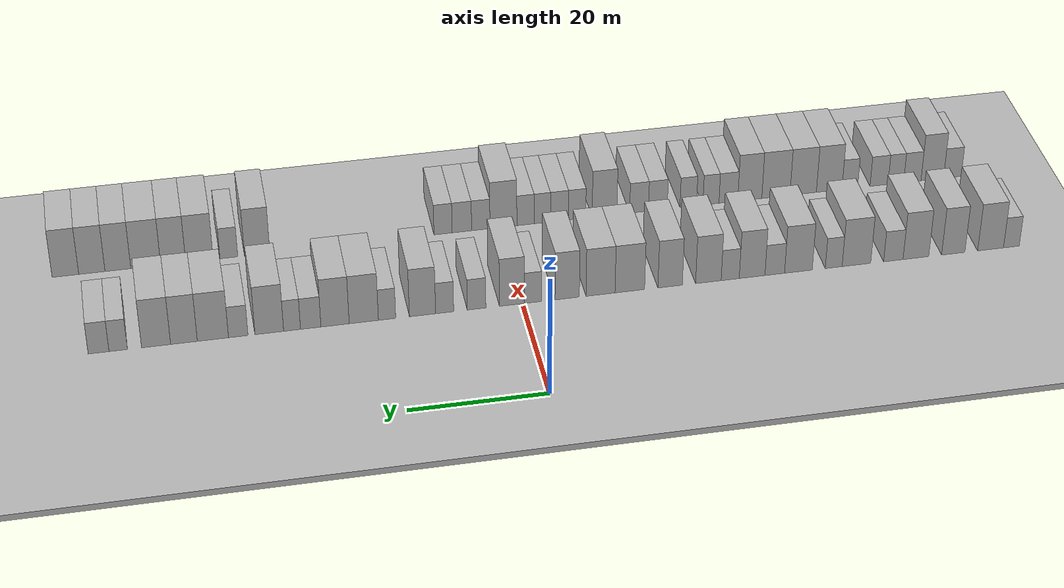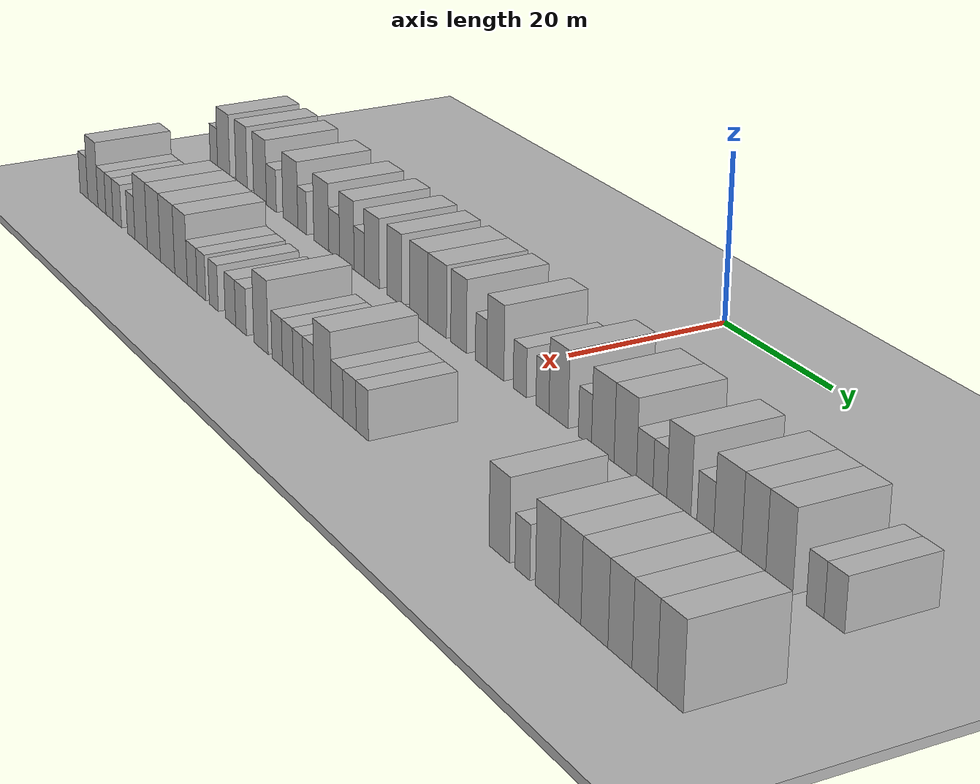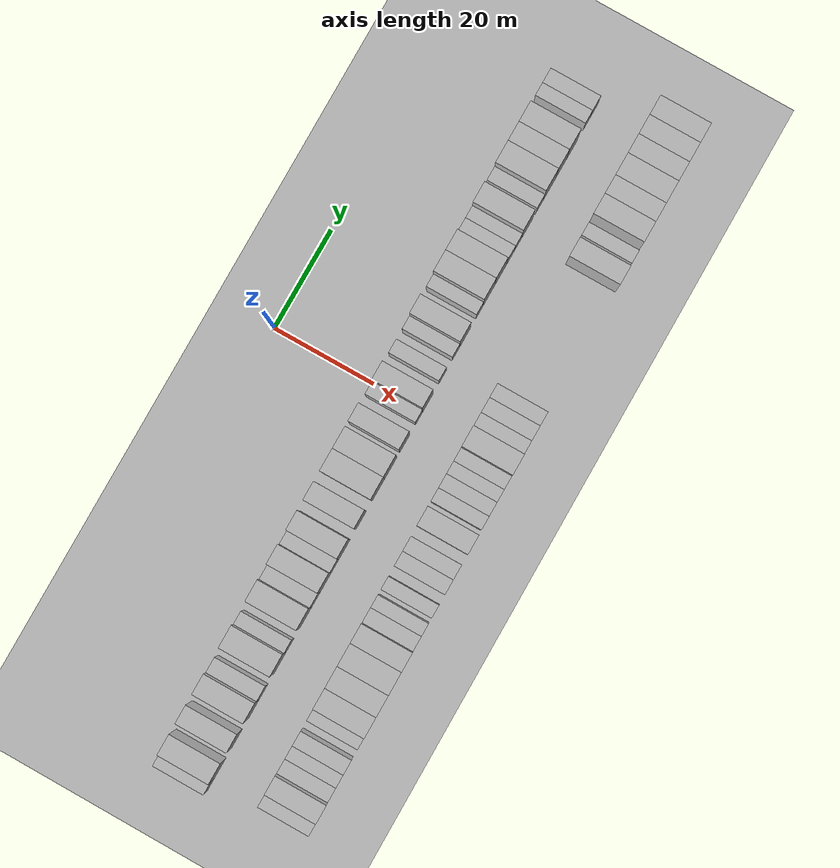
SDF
<sdf version="1.6">
 <world name="default">
  <include><name>ground_plane_1</name><uri>model://HANNAS_ground_plane</uri></include>
  <include>
   <name>ground_plane_2</name>
   <uri>model://HANNAS_ground_plane</uri>
   <pose>100 0 0  0 0 0</pose>
  </include>
  <model name="building_32">
   <static>1</static>
   <pose>25.0000 -74.3386 0 0.000000 0.000000 0.000000</pose>
   <link name="link">
    <pose>0 0 3.00 0 0 0</pose>
    <collision name="collision"><geometry><box><size>10.0000 2.4773 6.0000</size></box></geometry></collision>
    <visual name="visual">
     <cast_shadows>0</cast_shadows>
     <geometry><box><size>10.0000 2.4773 6.0000</size></box></geometry>
     <material>
      <script>
       <uri>model://HANNAS_wall/materials/scripts</uri>
       <uri>model://HANNAS_wall/materials/textures</uri>
       <name>vrc/HANNAS_wall</name>
      </script>
     </material>
    </visual>
   </link>
  </model>
  <model name="building_33">
   <static>1</static>
   <pose>25.0000 -71.0812 0 0.000000 0.000000 0.000000</pose>
   <link name="link">
    <pose>0 0 4.50 0 0 0</pose>
    <collision name="collision"><geometry><box><size>10.0000 4.0374 9.0000</size></box></geometry></collision>
    <visual name="visual">
     <cast_shadows>0</cast_shadows>
     <geometry><box><size>10.0000 4.0374 9.0000</size></box></geometry>
     <material>
      <script>
       <uri>model://HANNAS_wall/materials/scripts</uri>
       <uri>model://HANNAS_wall/materials/textures</uri>
       <name>vrc/HANNAS_wall</name>
      </script>
     </material>
    </visual>
   </link>
  </model>
  <model name="building_34">
   <static>1</static>
   <pose>25.0000 -65.2524 0 0.000000 0.000000 0.000000</pose>
   <link name="link">
    <pose>0 0 4.50 0 0 0</pose>
    <collision name="collision"><geometry><box><size>10.0000 3.6204 9.0000</size></box></geometry></collision>
    <visual name="visual">
     <cast_shadows>0</cast_shadows>
     <geometry><box><size>10.0000 3.6204 9.0000</size></box></geometry>
     <material>
      <script>
       <uri>model://HANNAS_wall/materials/scripts</uri>
       <uri>model://HANNAS_wall/materials/textures</uri>
       <name>vrc/HANNAS_wall</name>
      </script>
     </material>
    </visual>
   </link>
  </model>
  <model name="building_35">
   <static>1</static>
   <pose>25.0000 -59.4481 0 0.000000 0.000000 0.000000</pose>
   <link name="link">
    <pose>0 0 4.50 0 0 0</pose>
    <collision name="collision"><geometry><box><size>10.0000 3.9881 9.0000</size></box></geometry></collision>
    <visual name="visual">
     <cast_shadows>0</cast_shadows>
     <geometry><box><size>10.0000 3.9881 9.0000</size></box></geometry>
     <material>
      <script>
       <uri>model://HANNAS_wall/materials/scripts</uri>
       <uri>model://HANNAS_wall/materials/textures</uri>
       <name>vrc/HANNAS_wall</name>
      </script>
     </material>
    </visual>
   </link>
  </model>
  <model name="building_36">
   <static>1</static>
   <pose>25.0000 -55.9549 0 0.000000 0.000000 0.000000</pose>
   <link name="link">
    <pose>0 0 3.00 0 0 0</pose>
    <collision name="collision"><geometry><box><size>10.0000 2.9984 6.0000</size></box></geometry></collision>
    <visual name="visual">
     <cast_shadows>0</cast_shadows>
     <geometry><box><size>10.0000 2.9984 6.0000</size></box></geometry>
     <material>
      <script>
       <uri>model://HANNAS_wall/materials/scripts</uri>
       <uri>model://HANNAS_wall/materials/textures</uri>
       <name>vrc/HANNAS_wall</name>
      </script>
     </material>
    </visual>
   </link>
  </model>
  <model name="building_37">
   <static>1</static>
   <pose>25.0000 -50.2555 0 0.000000 0.000000 0.000000</pose>
   <link name="link">
    <pose>0 0 4.50 0 0 0</pose>
    <collision name="collision"><geometry><box><size>10.0000 4.4004 9.0000</size></box></geometry></collision>
    <visual name="visual">
     <cast_shadows>0</cast_shadows>
     <geometry><box><size>10.0000 4.4004 9.0000</size></box></geometry>
     <material>
      <script>
       <uri>model://HANNAS_wall/materials/scripts</uri>
       <uri>model://HANNAS_wall/materials/textures</uri>
       <name>vrc/HANNAS_wall</name>
      </script>
     </material>
    </visual>
   </link>
  </model>
  <model name="building_38">
   <static>1</static>
   <pose>25.0000 -46.7610 0 0.000000 0.000000 0.000000</pose>
   <link name="link">
    <pose>0 0 3.00 0 0 0</pose>
    <collision name="collision"><geometry><box><size>10.0000 2.5888 6.0000</size></box></geometry></collision>
    <visual name="visual">
     <cast_shadows>0</cast_shadows>
     <geometry><box><size>10.0000 2.5888 6.0000</size></box></geometry>
     <material>
      <script>
       <uri>model://HANNAS_wall/materials/scripts</uri>
       <uri>model://HANNAS_wall/materials/textures</uri>
       <name>vrc/HANNAS_wall</name>
      </script>
     </material>
    </visual>
   </link>
  </model>
  <model name="building_39">
   <static>1</static>
   <pose>25.0000 -41.3488 0 0.000000 0.000000 0.000000</pose>
   <link name="link">
    <pose>0 0 4.50 0 0 0</pose>
    <collision name="collision"><geometry><box><size>10.0000 4.2356 9.0000</size></box></geometry></collision>
    <visual name="visual">
     <cast_shadows>0</cast_shadows>
     <geometry><box><size>10.0000 4.2356 9.0000</size></box></geometry>
     <material>
      <script>
       <uri>model://HANNAS_wall/materials/scripts</uri>
       <uri>model://HANNAS_wall/materials/textures</uri>
       <name>vrc/HANNAS_wall</name>
      </script>
     </material>
    </visual>
   </link>
  </model>
  <model name="building_40">
   <static>1</static>
   <pose>25.0000 -37.7375 0 0.000000 0.000000 0.000000</pose>
   <link name="link">
    <pose>0 0 3.00 0 0 0</pose>
    <collision name="collision"><geometry><box><size>10.0000 2.9869 6.0000</size></box></geometry></collision>
    <visual name="visual">
     <cast_shadows>0</cast_shadows>
     <geometry><box><size>10.0000 2.9869 6.0000</size></box></geometry>
     <material>
      <script>
       <uri>model://HANNAS_wall/materials/scripts</uri>
       <uri>model://HANNAS_wall/materials/textures</uri>
       <name>vrc/HANNAS_wall</name>
      </script>
     </material>
    </visual>
   </link>
  </model>
  <model name="building_41">
   <static>1</static>
   <pose>25.0000 -34.2889 0 0.000000 0.000000 0.000000</pose>
   <link name="link">
    <pose>0 0 4.50 0 0 0</pose>
    <collision name="collision"><geometry><box><size>10.0000 3.9105 9.0000</size></box></geometry></collision>
    <visual name="visual">
     <cast_shadows>0</cast_shadows>
     <geometry><box><size>10.0000 3.9105 9.0000</size></box></geometry>
     <material>
      <script>
       <uri>model://HANNAS_wall/materials/scripts</uri>
       <uri>model://HANNAS_wall/materials/textures</uri>
       <name>vrc/HANNAS_wall</name>
      </script>
     </material>
    </visual>
   </link>
  </model>
  <model name="building_42">
   <static>1</static>
   <pose>25.0000 -30.9628 0 0.000000 0.000000 0.000000</pose>
   <link name="link">
    <pose>0 0 3.00 0 0 0</pose>
    <collision name="collision"><geometry><box><size>10.0000 2.7416 6.0000</size></box></geometry></collision>
    <visual name="visual">
     <cast_shadows>0</cast_shadows>
     <geometry><box><size>10.0000 2.7416 6.0000</size></box></geometry>
     <material>
      <script>
       <uri>model://HANNAS_wall/materials/scripts</uri>
       <uri>model://HANNAS_wall/materials/textures</uri>
       <name>vrc/HANNAS_wall</name>
      </script>
     </material>
    </visual>
   </link>
  </model>
  <model name="building_43">
   <static>1</static>
   <pose>25.0000 -27.6589 0 0.000000 0.000000 0.000000</pose>
   <link name="link">
    <pose>0 0 4.50 0 0 0</pose>
    <collision name="collision"><geometry><box><size>10.0000 3.8662 9.0000</size></box></geometry></collision>
    <visual name="visual">
     <cast_shadows>0</cast_shadows>
     <geometry><box><size>10.0000 3.8662 9.0000</size></box></geometry>
     <material>
      <script>
       <uri>model://HANNAS_wall/materials/scripts</uri>
       <uri>model://HANNAS_wall/materials/textures</uri>
       <name>vrc/HANNAS_wall</name>
      </script>
     </material>
    </visual>
   </link>
  </model>
  <model name="building_44">
   <static>1</static>
   <pose>25.0000 -21.8869 0 0.000000 0.000000 0.000000</pose>
   <link name="link">
    <pose>0 0 4.50 0 0 0</pose>
    <collision name="collision"><geometry><box><size>10.0000 3.6778 9.0000</size></box></geometry></collision>
    <visual name="visual">
     <cast_shadows>0</cast_shadows>
     <geometry><box><size>10.0000 3.6778 9.0000</size></box></geometry>
     <material>
      <script>
       <uri>model://HANNAS_wall/materials/scripts</uri>
       <uri>model://HANNAS_wall/materials/textures</uri>
       <name>vrc/HANNAS_wall</name>
      </script>
     </material>
    </visual>
   </link>
  </model>
  <model name="building_45">
   <static>1</static>
   <pose>25.0000 -15.8329 0 0.000000 0.000000 0.000000</pose>
   <link name="link">
    <pose>0 0 4.50 0 0 0</pose>
    <collision name="collision"><geometry><box><size>10.0000 4.4302 9.0000</size></box></geometry></collision>
    <visual name="visual">
     <cast_shadows>0</cast_shadows>
     <geometry><box><size>10.0000 4.4302 9.0000</size></box></geometry>
     <material>
      <script>
       <uri>model://HANNAS_wall/materials/scripts</uri>
       <uri>model://HANNAS_wall/materials/textures</uri>
       <name>vrc/HANNAS_wall</name>
      </script>
     </material>
    </visual>
   </link>
  </model>
  <model name="building_46">
   <static>1</static>
   <pose>25.0000 -11.4531 0 0.000000 0.000000 0.000000</pose>
   <link name="link">
    <pose>0 0 4.50 0 0 0</pose>
    <collision name="collision"><geometry><box><size>10.0000 4.3293 9.0000</size></box></geometry></collision>
    <visual name="visual">
     <cast_shadows>0</cast_shadows>
     <geometry><box><size>10.0000 4.3293 9.0000</size></box></geometry>
     <material>
      <script>
       <uri>model://HANNAS_wall/materials/scripts</uri>
       <uri>model://HANNAS_wall/materials/textures</uri>
       <name>vrc/HANNAS_wall</name>
      </script>
     </material>
    </visual>
   </link>
  </model>
  <model name="building_47">
   <static>1</static>
   <pose>25.0000 -6.4821 0 0.000000 0.000000 0.000000</pose>
   <link name="link">
    <pose>0 0 4.50 0 0 0</pose>
    <collision name="collision"><geometry><box><size>10.0000 3.6127 9.0000</size></box></geometry></collision>
    <visual name="visual">
     <cast_shadows>0</cast_shadows>
     <geometry><box><size>10.0000 3.6127 9.0000</size></box></geometry>
     <material>
      <script>
       <uri>model://HANNAS_wall/materials/scripts</uri>
       <uri>model://HANNAS_wall/materials/textures</uri>
       <name>vrc/HANNAS_wall</name>
      </script>
     </material>
    </visual>
   </link>
  </model>
  <model name="building_48">
   <static>1</static>
   <pose>25.0000 -1.4025 0 0.000000 0.000000 0.000000</pose>
   <link name="link">
    <pose>0 0 3.00 0 0 0</pose>
    <collision name="collision"><geometry><box><size>10.0000 2.5464 6.0000</size></box></geometry></collision>
    <visual name="visual">
     <cast_shadows>0</cast_shadows>
     <geometry><box><size>10.0000 2.5464 6.0000</size></box></geometry>
     <material>
      <script>
       <uri>model://HANNAS_wall/materials/scripts</uri>
       <uri>model://HANNAS_wall/materials/textures</uri>
       <name>vrc/HANNAS_wall</name>
      </script>
     </material>
    </visual>
   </link>
  </model>
  <model name="building_49">
   <static>1</static>
   <pose>25.0000 1.7105 0 0.000000 0.000000 0.000000</pose>
   <link name="link">
    <pose>0 0 4.50 0 0 0</pose>
    <collision name="collision"><geometry><box><size>10.0000 3.6796 9.0000</size></box></geometry></collision>
    <visual name="visual">
     <cast_shadows>0</cast_shadows>
     <geometry><box><size>10.0000 3.6796 9.0000</size></box></geometry>
     <material>
      <script>
       <uri>model://HANNAS_wall/materials/scripts</uri>
       <uri>model://HANNAS_wall/materials/textures</uri>
       <name>vrc/HANNAS_wall</name>
      </script>
     </material>
    </visual>
   </link>
  </model>
  <model name="building_50">
   <static>1</static>
   <pose>25.0000 6.9176 0 0.000000 0.000000 0.000000</pose>
   <link name="link">
    <pose>0 0 3.00 0 0 0</pose>
    <collision name="collision"><geometry><box><size>10.0000 2.7346 6.0000</size></box></geometry></collision>
    <visual name="visual">
     <cast_shadows>0</cast_shadows>
     <geometry><box><size>10.0000 2.7346 6.0000</size></box></geometry>
     <material>
      <script>
       <uri>model://HANNAS_wall/materials/scripts</uri>
       <uri>model://HANNAS_wall/materials/textures</uri>
       <name>vrc/HANNAS_wall</name>
      </script>
     </material>
    </visual>
   </link>
  </model>
  <model name="building_51">
   <static>1</static>
   <pose>25.0000 11.6050 0 0.000000 0.000000 0.000000</pose>
   <link name="link">
    <pose>0 0 3.00 0 0 0</pose>
    <collision name="collision"><geometry><box><size>10.0000 2.6404 6.0000</size></box></geometry></collision>
    <visual name="visual">
     <cast_shadows>0</cast_shadows>
     <geometry><box><size>10.0000 2.6404 6.0000</size></box></geometry>
     <material>
      <script>
       <uri>model://HANNAS_wall/materials/scripts</uri>
       <uri>model://HANNAS_wall/materials/textures</uri>
       <name>vrc/HANNAS_wall</name>
      </script>
     </material>
    </visual>
   </link>
  </model>
  <model name="building_52">
   <static>1</static>
   <pose>25.0000 14.8452 0 0.000000 0.000000 0.000000</pose>
   <link name="link">
    <pose>0 0 4.50 0 0 0</pose>
    <collision name="collision"><geometry><box><size>10.0000 3.8400 9.0000</size></box></geometry></collision>
    <visual name="visual">
     <cast_shadows>0</cast_shadows>
     <geometry><box><size>10.0000 3.8400 9.0000</size></box></geometry>
     <material>
      <script>
       <uri>model://HANNAS_wall/materials/scripts</uri>
       <uri>model://HANNAS_wall/materials/textures</uri>
       <name>vrc/HANNAS_wall</name>
      </script>
     </material>
    </visual>
   </link>
  </model>
  <model name="building_53">
   <static>1</static>
   <pose>25.0000 20.0217 0 0.000000 0.000000 0.000000</pose>
   <link name="link">
    <pose>0 0 3.00 0 0 0</pose>
    <collision name="collision"><geometry><box><size>10.0000 2.5130 6.0000</size></box></geometry></collision>
    <visual name="visual">
     <cast_shadows>0</cast_shadows>
     <geometry><box><size>10.0000 2.5130 6.0000</size></box></geometry>
     <material>
      <script>
       <uri>model://HANNAS_wall/materials/scripts</uri>
       <uri>model://HANNAS_wall/materials/textures</uri>
       <name>vrc/HANNAS_wall</name>
      </script>
     </material>
    </visual>
   </link>
  </model>
  <model name="building_54">
   <static>1</static>
   <pose>25.0000 23.4024 0 0.000000 0.000000 0.000000</pose>
   <link name="link">
    <pose>0 0 4.50 0 0 0</pose>
    <collision name="collision"><geometry><box><size>10.0000 4.2483 9.0000</size></box></geometry></collision>
    <visual name="visual">
     <cast_shadows>0</cast_shadows>
     <geometry><box><size>10.0000 4.2483 9.0000</size></box></geometry>
     <material>
      <script>
       <uri>model://HANNAS_wall/materials/scripts</uri>
       <uri>model://HANNAS_wall/materials/textures</uri>
       <name>vrc/HANNAS_wall</name>
      </script>
     </material>
    </visual>
   </link>
  </model>
  <model name="building_55">
   <static>1</static>
   <pose>25.0000 27.5710 0 0.000000 0.000000 0.000000</pose>
   <link name="link">
    <pose>0 0 4.50 0 0 0</pose>
    <collision name="collision"><geometry><box><size>10.0000 4.0890 9.0000</size></box></geometry></collision>
    <visual name="visual">
     <cast_shadows>0</cast_shadows>
     <geometry><box><size>10.0000 4.0890 9.0000</size></box></geometry>
     <material>
      <script>
       <uri>model://HANNAS_wall/materials/scripts</uri>
       <uri>model://HANNAS_wall/materials/textures</uri>
       <name>vrc/HANNAS_wall</name>
      </script>
     </material>
    </visual>
   </link>
  </model>
  <model name="building_56">
   <static>1</static>
   <pose>25.0000 31.0874 0 0.000000 0.000000 0.000000</pose>
   <link name="link">
    <pose>0 0 3.00 0 0 0</pose>
    <collision name="collision"><geometry><box><size>10.0000 2.9438 6.0000</size></box></geometry></collision>
    <visual name="visual">
     <cast_shadows>0</cast_shadows>
     <geometry><box><size>10.0000 2.9438 6.0000</size></box></geometry>
     <material>
      <script>
       <uri>model://HANNAS_wall/materials/scripts</uri>
       <uri>model://HANNAS_wall/materials/textures</uri>
       <name>vrc/HANNAS_wall</name>
      </script>
     </material>
    </visual>
   </link>
  </model>
  <model name="building_57">
   <static>1</static>
   <pose>25.0000 33.7737 0 0.000000 0.000000 0.000000</pose>
   <link name="link">
    <pose>0 0 3.00 0 0 0</pose>
    <collision name="collision"><geometry><box><size>10.0000 2.4288 6.0000</size></box></geometry></collision>
    <visual name="visual">
     <cast_shadows>0</cast_shadows>
     <geometry><box><size>10.0000 2.4288 6.0000</size></box></geometry>
     <material>
      <script>
       <uri>model://HANNAS_wall/materials/scripts</uri>
       <uri>model://HANNAS_wall/materials/textures</uri>
       <name>vrc/HANNAS_wall</name>
      </script>
     </material>
    </visual>
   </link>
  </model>
  <model name="building_58">
   <static>1</static>
   <pose>25.0000 37.0472 0 0.000000 0.000000 0.000000</pose>
   <link name="link">
    <pose>0 0 4.50 0 0 0</pose>
    <collision name="collision"><geometry><box><size>10.0000 4.1182 9.0000</size></box></geometry></collision>
    <visual name="visual">
     <cast_shadows>0</cast_shadows>
     <geometry><box><size>10.0000 4.1182 9.0000</size></box></geometry>
     <material>
      <script>
       <uri>model://HANNAS_wall/materials/scripts</uri>
       <uri>model://HANNAS_wall/materials/textures</uri>
       <name>vrc/HANNAS_wall</name>
      </script>
     </material>
    </visual>
   </link>
  </model>
  <model name="building_59">
   <static>1</static>
   <pose>25.0000 41.4987 0 0.000000 0.000000 0.000000</pose>
   <link name="link">
    <pose>0 0 3.00 0 0 0</pose>
    <collision name="collision"><geometry><box><size>10.0000 2.7848 6.0000</size></box></geometry></collision>
    <visual name="visual">
     <cast_shadows>0</cast_shadows>
     <geometry><box><size>10.0000 2.7848 6.0000</size></box></geometry>
     <material>
      <script>
       <uri>model://HANNAS_wall/materials/scripts</uri>
       <uri>model://HANNAS_wall/materials/textures</uri>
       <name>vrc/HANNAS_wall</name>
      </script>
     </material>
    </visual>
   </link>
  </model>
  <model name="building_60">
   <static>1</static>
   <pose>25.0000 45.1149 0 0.000000 0.000000 0.000000</pose>
   <link name="link">
    <pose>0 0 4.50 0 0 0</pose>
    <collision name="collision"><geometry><box><size>10.0000 4.4474 9.0000</size></box></geometry></collision>
    <visual name="visual">
     <cast_shadows>0</cast_shadows>
     <geometry><box><size>10.0000 4.4474 9.0000</size></box></geometry>
     <material>
      <script>
       <uri>model://HANNAS_wall/materials/scripts</uri>
       <uri>model://HANNAS_wall/materials/textures</uri>
       <name>vrc/HANNAS_wall</name>
      </script>
     </material>
    </visual>
   </link>
  </model>
  <model name="building_61">
   <static>1</static>
   <pose>25.0000 49.2391 0 0.000000 0.000000 0.000000</pose>
   <link name="link">
    <pose>0 0 4.50 0 0 0</pose>
    <collision name="collision"><geometry><box><size>10.0000 3.8010 9.0000</size></box></geometry></collision>
    <visual name="visual">
     <cast_shadows>0</cast_shadows>
     <geometry><box><size>10.0000 3.8010 9.0000</size></box></geometry>
     <material>
      <script>
       <uri>model://HANNAS_wall/materials/scripts</uri>
       <uri>model://HANNAS_wall/materials/textures</uri>
       <name>vrc/HANNAS_wall</name>
      </script>
     </material>
    </visual>
   </link>
  </model>
  <model name="building_62">
   <static>1</static>
   <pose>25.0000 53.1972 0 0.000000 0.000000 0.000000</pose>
   <link name="link">
    <pose>0 0 4.50 0 0 0</pose>
    <collision name="collision"><geometry><box><size>10.0000 4.1154 9.0000</size></box></geometry></collision>
    <visual name="visual">
     <cast_shadows>0</cast_shadows>
     <geometry><box><size>10.0000 4.1154 9.0000</size></box></geometry>
     <material>
      <script>
       <uri>model://HANNAS_wall/materials/scripts</uri>
       <uri>model://HANNAS_wall/materials/textures</uri>
       <name>vrc/HANNAS_wall</name>
      </script>
     </material>
    </visual>
   </link>
  </model>
  <model name="building_63">
   <static>1</static>
   <pose>25.0000 58.5541 0 0.000000 0.000000 0.000000</pose>
   <link name="link">
    <pose>0 0 3.00 0 0 0</pose>
    <collision name="collision"><geometry><box><size>10.0000 2.5984 6.0000</size></box></geometry></collision>
    <visual name="visual">
     <cast_shadows>0</cast_shadows>
     <geometry><box><size>10.0000 2.5984 6.0000</size></box></geometry>
     <material>
      <script>
       <uri>model://HANNAS_wall/materials/scripts</uri>
       <uri>model://HANNAS_wall/materials/textures</uri>
       <name>vrc/HANNAS_wall</name>
      </script>
     </material>
    </visual>
   </link>
  </model>
  <model name="building_64">
   <static>1</static>
   <pose>25.0000 61.3196 0 0.000000 0.000000 0.000000</pose>
   <link name="link">
    <pose>0 0 3.00 0 0 0</pose>
    <collision name="collision"><geometry><box><size>10.0000 2.9327 6.0000</size></box></geometry></collision>
    <visual name="visual">
     <cast_shadows>0</cast_shadows>
     <geometry><box><size>10.0000 2.9327 6.0000</size></box></geometry>
     <material>
      <script>
       <uri>model://HANNAS_wall/materials/scripts</uri>
       <uri>model://HANNAS_wall/materials/textures</uri>
       <name>vrc/HANNAS_wall</name>
      </script>
     </material>
    </visual>
   </link>
  </model>
  <model name="building_131">
   <static>1</static>
   <pose>44.0000 -71.3536 0 0.000000 0.000000 0.000000</pose>
   <link name="link">
    <pose>0 0 3.00 0 0 0</pose>
    <collision name="collision"><geometry><box><size>10.0000 2.8537 6.0000</size></box></geometry></collision>
    <visual name="visual">
     <cast_shadows>0</cast_shadows>
     <geometry><box><size>10.0000 2.8537 6.0000</size></box></geometry>
     <material>
      <script>
       <uri>model://HANNAS_wall/materials/scripts</uri>
       <uri>model://HANNAS_wall/materials/textures</uri>
       <name>vrc/HANNAS_wall</name>
      </script>
     </material>
    </visual>
   </link>
  </model>
  <model name="building_132">
   <static>1</static>
   <pose>44.0000 -68.1018 0 0.000000 0.000000 0.000000</pose>
   <link name="link">
    <pose>0 0 4.50 0 0 0</pose>
    <collision name="collision"><geometry><box><size>10.0000 3.6499 9.0000</size></box></geometry></collision>
    <visual name="visual">
     <cast_shadows>0</cast_shadows>
     <geometry><box><size>10.0000 3.6499 9.0000</size></box></geometry>
     <material>
      <script>
       <uri>model://HANNAS_wall/materials/scripts</uri>
       <uri>model://HANNAS_wall/materials/textures</uri>
       <name>vrc/HANNAS_wall</name>
      </script>
     </material>
    </visual>
   </link>
  </model>
  <model name="building_133">
   <static>1</static>
   <pose>44.0000 -64.8727 0 0.000000 0.000000 0.000000</pose>
   <link name="link">
    <pose>0 0 3.00 0 0 0</pose>
    <collision name="collision"><geometry><box><size>10.0000 2.8084 6.0000</size></box></geometry></collision>
    <visual name="visual">
     <cast_shadows>0</cast_shadows>
     <geometry><box><size>10.0000 2.8084 6.0000</size></box></geometry>
     <material>
      <script>
       <uri>model://HANNAS_wall/materials/scripts</uri>
       <uri>model://HANNAS_wall/materials/textures</uri>
       <name>vrc/HANNAS_wall</name>
      </script>
     </material>
    </visual>
   </link>
  </model>
  <model name="building_134">
   <static>1</static>
   <pose>44.0000 -62.2093 0 0.000000 0.000000 0.000000</pose>
   <link name="link">
    <pose>0 0 3.00 0 0 0</pose>
    <collision name="collision"><geometry><box><size>10.0000 2.5185 6.0000</size></box></geometry></collision>
    <visual name="visual">
     <cast_shadows>0</cast_shadows>
     <geometry><box><size>10.0000 2.5185 6.0000</size></box></geometry>
     <material>
      <script>
       <uri>model://HANNAS_wall/materials/scripts</uri>
       <uri>model://HANNAS_wall/materials/textures</uri>
       <name>vrc/HANNAS_wall</name>
      </script>
     </material>
    </visual>
   </link>
  </model>
  <model name="building_135">
   <static>1</static>
   <pose>44.0000 -59.5042 0 0.000000 0.000000 0.000000</pose>
   <link name="link">
    <pose>0 0 3.00 0 0 0</pose>
    <collision name="collision"><geometry><box><size>10.0000 2.8917 6.0000</size></box></geometry></collision>
    <visual name="visual">
     <cast_shadows>0</cast_shadows>
     <geometry><box><size>10.0000 2.8917 6.0000</size></box></geometry>
     <material>
      <script>
       <uri>model://HANNAS_wall/materials/scripts</uri>
       <uri>model://HANNAS_wall/materials/textures</uri>
       <name>vrc/HANNAS_wall</name>
      </script>
     </material>
    </visual>
   </link>
  </model>
  <model name="building_136">
   <static>1</static>
   <pose>44.0000 -54.8017 0 0.000000 0.000000 0.000000</pose>
   <link name="link">
    <pose>0 0 3.00 0 0 0</pose>
    <collision name="collision"><geometry><box><size>10.0000 2.5135 6.0000</size></box></geometry></collision>
    <visual name="visual">
     <cast_shadows>0</cast_shadows>
     <geometry><box><size>10.0000 2.5135 6.0000</size></box></geometry>
     <material>
      <script>
       <uri>model://HANNAS_wall/materials/scripts</uri>
       <uri>model://HANNAS_wall/materials/textures</uri>
       <name>vrc/HANNAS_wall</name>
      </script>
     </material>
    </visual>
   </link>
  </model>
  <model name="building_137">
   <static>1</static>
   <pose>44.0000 -51.5059 0 0.000000 0.000000 0.000000</pose>
   <link name="link">
    <pose>0 0 4.50 0 0 0</pose>
    <collision name="collision"><geometry><box><size>10.0000 4.0780 9.0000</size></box></geometry></collision>
    <visual name="visual">
     <cast_shadows>0</cast_shadows>
     <geometry><box><size>10.0000 4.0780 9.0000</size></box></geometry>
     <material>
      <script>
       <uri>model://HANNAS_wall/materials/scripts</uri>
       <uri>model://HANNAS_wall/materials/textures</uri>
       <name>vrc/HANNAS_wall</name>
      </script>
     </material>
    </visual>
   </link>
  </model>
  <model name="building_138">
   <static>1</static>
   <pose>44.0000 -47.3587 0 0.000000 0.000000 0.000000</pose>
   <link name="link">
    <pose>0 0 4.50 0 0 0</pose>
    <collision name="collision"><geometry><box><size>10.0000 4.2164 9.0000</size></box></geometry></collision>
    <visual name="visual">
     <cast_shadows>0</cast_shadows>
     <geometry><box><size>10.0000 4.2164 9.0000</size></box></geometry>
     <material>
      <script>
       <uri>model://HANNAS_wall/materials/scripts</uri>
       <uri>model://HANNAS_wall/materials/textures</uri>
       <name>vrc/HANNAS_wall</name>
      </script>
     </material>
    </visual>
   </link>
  </model>
  <model name="building_139">
   <static>1</static>
   <pose>44.0000 -43.0142 0 0.000000 0.000000 0.000000</pose>
   <link name="link">
    <pose>0 0 4.50 0 0 0</pose>
    <collision name="collision"><geometry><box><size>10.0000 4.4725 9.0000</size></box></geometry></collision>
    <visual name="visual">
     <cast_shadows>0</cast_shadows>
     <geometry><box><size>10.0000 4.4725 9.0000</size></box></geometry>
     <material>
      <script>
       <uri>model://HANNAS_wall/materials/scripts</uri>
       <uri>model://HANNAS_wall/materials/textures</uri>
       <name>vrc/HANNAS_wall</name>
      </script>
     </material>
    </visual>
   </link>
  </model>
  <model name="building_140">
   <static>1</static>
   <pose>44.0000 -38.8707 0 0.000000 0.000000 0.000000</pose>
   <link name="link">
    <pose>0 0 4.50 0 0 0</pose>
    <collision name="collision"><geometry><box><size>10.0000 3.8147 9.0000</size></box></geometry></collision>
    <visual name="visual">
     <cast_shadows>0</cast_shadows>
     <geometry><box><size>10.0000 3.8147 9.0000</size></box></geometry>
     <material>
      <script>
       <uri>model://HANNAS_wall/materials/scripts</uri>
       <uri>model://HANNAS_wall/materials/textures</uri>
       <name>vrc/HANNAS_wall</name>
      </script>
     </material>
    </visual>
   </link>
  </model>
  <model name="building_141">
   <static>1</static>
   <pose>44.0000 -35.4810 0 0.000000 0.000000 0.000000</pose>
   <link name="link">
    <pose>0 0 3.00 0 0 0</pose>
    <collision name="collision"><geometry><box><size>10.0000 2.9647 6.0000</size></box></geometry></collision>
    <visual name="visual">
     <cast_shadows>0</cast_shadows>
     <geometry><box><size>10.0000 2.9647 6.0000</size></box></geometry>
     <material>
      <script>
       <uri>model://HANNAS_wall/materials/scripts</uri>
       <uri>model://HANNAS_wall/materials/textures</uri>
       <name>vrc/HANNAS_wall</name>
      </script>
     </material>
    </visual>
   </link>
  </model>
  <model name="building_142">
   <static>1</static>
   <pose>44.0000 -32.7299 0 0.000000 0.000000 0.000000</pose>
   <link name="link">
    <pose>0 0 3.00 0 0 0</pose>
    <collision name="collision"><geometry><box><size>10.0000 2.5376 6.0000</size></box></geometry></collision>
    <visual name="visual">
     <cast_shadows>0</cast_shadows>
     <geometry><box><size>10.0000 2.5376 6.0000</size></box></geometry>
     <material>
      <script>
       <uri>model://HANNAS_wall/materials/scripts</uri>
       <uri>model://HANNAS_wall/materials/textures</uri>
       <name>vrc/HANNAS_wall</name>
      </script>
     </material>
    </visual>
   </link>
  </model>
  <model name="building_143">
   <static>1</static>
   <pose>44.0000 -29.1619 0 0.000000 0.000000 0.000000</pose>
   <link name="link">
    <pose>0 0 3.00 0 0 0</pose>
    <collision name="collision"><geometry><box><size>10.0000 2.5983 6.0000</size></box></geometry></collision>
    <visual name="visual">
     <cast_shadows>0</cast_shadows>
     <geometry><box><size>10.0000 2.5983 6.0000</size></box></geometry>
     <material>
      <script>
       <uri>model://HANNAS_wall/materials/scripts</uri>
       <uri>model://HANNAS_wall/materials/textures</uri>
       <name>vrc/HANNAS_wall</name>
      </script>
     </material>
    </visual>
   </link>
  </model>
  <model name="building_144">
   <static>1</static>
   <pose>44.0000 -24.3963 0 0.000000 0.000000 0.000000</pose>
   <link name="link">
    <pose>0 0 3.00 0 0 0</pose>
    <collision name="collision"><geometry><box><size>10.0000 2.9330 6.0000</size></box></geometry></collision>
    <visual name="visual">
     <cast_shadows>0</cast_shadows>
     <geometry><box><size>10.0000 2.9330 6.0000</size></box></geometry>
     <material>
      <script>
       <uri>model://HANNAS_wall/materials/scripts</uri>
       <uri>model://HANNAS_wall/materials/textures</uri>
       <name>vrc/HANNAS_wall</name>
      </script>
     </material>
    </visual>
   </link>
  </model>
  <model name="building_145">
   <static>1</static>
   <pose>44.0000 -21.4575 0 0.000000 0.000000 0.000000</pose>
   <link name="link">
    <pose>0 0 3.00 0 0 0</pose>
    <collision name="collision"><geometry><box><size>10.0000 2.9444 6.0000</size></box></geometry></collision>
    <visual name="visual">
     <cast_shadows>0</cast_shadows>
     <geometry><box><size>10.0000 2.9444 6.0000</size></box></geometry>
     <material>
      <script>
       <uri>model://HANNAS_wall/materials/scripts</uri>
       <uri>model://HANNAS_wall/materials/textures</uri>
       <name>vrc/HANNAS_wall</name>
      </script>
     </material>
    </visual>
   </link>
  </model>
  <model name="building_146">
   <static>1</static>
   <pose>44.0000 -16.0639 0 0.000000 0.000000 0.000000</pose>
   <link name="link">
    <pose>0 0 4.50 0 0 0</pose>
    <collision name="collision"><geometry><box><size>10.0000 3.8430 9.0000</size></box></geometry></collision>
    <visual name="visual">
     <cast_shadows>0</cast_shadows>
     <geometry><box><size>10.0000 3.8430 9.0000</size></box></geometry>
     <material>
      <script>
       <uri>model://HANNAS_wall/materials/scripts</uri>
       <uri>model://HANNAS_wall/materials/textures</uri>
       <name>vrc/HANNAS_wall</name>
      </script>
     </material>
    </visual>
   </link>
  </model>
  <model name="building_147">
   <static>1</static>
   <pose>44.0000 -11.7955 0 0.000000 0.000000 0.000000</pose>
   <link name="link">
    <pose>0 0 3.00 0 0 0</pose>
    <collision name="collision"><geometry><box><size>10.0000 2.6937 6.0000</size></box></geometry></collision>
    <visual name="visual">
     <cast_shadows>0</cast_shadows>
     <geometry><box><size>10.0000 2.6937 6.0000</size></box></geometry>
     <material>
      <script>
       <uri>model://HANNAS_wall/materials/scripts</uri>
       <uri>model://HANNAS_wall/materials/textures</uri>
       <name>vrc/HANNAS_wall</name>
      </script>
     </material>
    </visual>
   </link>
  </model>
  <model name="building_148">
   <static>1</static>
   <pose>44.0000 -9.0617 0 0.000000 0.000000 0.000000</pose>
   <link name="link">
    <pose>0 0 3.00 0 0 0</pose>
    <collision name="collision"><geometry><box><size>10.0000 2.7740 6.0000</size></box></geometry></collision>
    <visual name="visual">
     <cast_shadows>0</cast_shadows>
     <geometry><box><size>10.0000 2.7740 6.0000</size></box></geometry>
     <material>
      <script>
       <uri>model://HANNAS_wall/materials/scripts</uri>
       <uri>model://HANNAS_wall/materials/textures</uri>
       <name>vrc/HANNAS_wall</name>
      </script>
     </material>
    </visual>
   </link>
  </model>
  <model name="building_149">
   <static>1</static>
   <pose>44.0000 -6.4224 0 0.000000 0.000000 0.000000</pose>
   <link name="link">
    <pose>0 0 3.00 0 0 0</pose>
    <collision name="collision"><geometry><box><size>10.0000 2.5044 6.0000</size></box></geometry></collision>
    <visual name="visual">
     <cast_shadows>0</cast_shadows>
     <geometry><box><size>10.0000 2.5044 6.0000</size></box></geometry>
     <material>
      <script>
       <uri>model://HANNAS_wall/materials/scripts</uri>
       <uri>model://HANNAS_wall/materials/textures</uri>
       <name>vrc/HANNAS_wall</name>
      </script>
     </material>
    </visual>
   </link>
  </model>
  <model name="building_150">
   <static>1</static>
   <pose>44.0000 -3.8349 0 0.000000 0.000000 0.000000</pose>
   <link name="link">
    <pose>0 0 3.00 0 0 0</pose>
    <collision name="collision"><geometry><box><size>10.0000 2.6707 6.0000</size></box></geometry></collision>
    <visual name="visual">
     <cast_shadows>0</cast_shadows>
     <geometry><box><size>10.0000 2.6707 6.0000</size></box></geometry>
     <material>
      <script>
       <uri>model://HANNAS_wall/materials/scripts</uri>
       <uri>model://HANNAS_wall/materials/textures</uri>
       <name>vrc/HANNAS_wall</name>
      </script>
     </material>
    </visual>
   </link>
  </model>
  <model name="building_151">
   <static>1</static>
   <pose>44.0000 -0.4311 0 0.000000 0.000000 0.000000</pose>
   <link name="link">
    <pose>0 0 4.50 0 0 0</pose>
    <collision name="collision"><geometry><box><size>10.0000 4.1370 9.0000</size></box></geometry></collision>
    <visual name="visual">
     <cast_shadows>0</cast_shadows>
     <geometry><box><size>10.0000 4.1370 9.0000</size></box></geometry>
     <material>
      <script>
       <uri>model://HANNAS_wall/materials/scripts</uri>
       <uri>model://HANNAS_wall/materials/textures</uri>
       <name>vrc/HANNAS_wall</name>
      </script>
     </material>
    </visual>
   </link>
  </model>
  <model name="building_152">
   <static>1</static>
   <pose>44.0000 3.0463 0 0.000000 0.000000 0.000000</pose>
   <link name="link">
    <pose>0 0 3.00 0 0 0</pose>
    <collision name="collision"><geometry><box><size>10.0000 2.8178 6.0000</size></box></geometry></collision>
    <visual name="visual">
     <cast_shadows>0</cast_shadows>
     <geometry><box><size>10.0000 2.8178 6.0000</size></box></geometry>
     <material>
      <script>
       <uri>model://HANNAS_wall/materials/scripts</uri>
       <uri>model://HANNAS_wall/materials/textures</uri>
       <name>vrc/HANNAS_wall</name>
      </script>
     </material>
    </visual>
   </link>
  </model>
  <model name="building_153">
   <static>1</static>
   <pose>44.0000 5.9424 0 0.000000 0.000000 0.000000</pose>
   <link name="link">
    <pose>0 0 3.00 0 0 0</pose>
    <collision name="collision"><geometry><box><size>10.0000 2.9742 6.0000</size></box></geometry></collision>
    <visual name="visual">
     <cast_shadows>0</cast_shadows>
     <geometry><box><size>10.0000 2.9742 6.0000</size></box></geometry>
     <material>
      <script>
       <uri>model://HANNAS_wall/materials/scripts</uri>
       <uri>model://HANNAS_wall/materials/textures</uri>
       <name>vrc/HANNAS_wall</name>
      </script>
     </material>
    </visual>
   </link>
  </model>
  <model name="building_154">
   <static>1</static>
   <pose>44.0000 8.8183 0 0.000000 0.000000 0.000000</pose>
   <link name="link">
    <pose>0 0 3.00 0 0 0</pose>
    <collision name="collision"><geometry><box><size>10.0000 2.7776 6.0000</size></box></geometry></collision>
    <visual name="visual">
     <cast_shadows>0</cast_shadows>
     <geometry><box><size>10.0000 2.7776 6.0000</size></box></geometry>
     <material>
      <script>
       <uri>model://HANNAS_wall/materials/scripts</uri>
       <uri>model://HANNAS_wall/materials/textures</uri>
       <name>vrc/HANNAS_wall</name>
      </script>
     </material>
    </visual>
   </link>
  </model>
  <model name="building_155">
   <static>1</static>
   <pose>44.0000 36.8995 0 0.000000 0.000000 0.000000</pose>
   <link name="link">
    <pose>0 0 4.50 0 0 0</pose>
    <collision name="collision"><geometry><box><size>10.0000 3.7950 9.0000</size></box></geometry></collision>
    <visual name="visual">
     <cast_shadows>0</cast_shadows>
     <geometry><box><size>10.0000 3.7950 9.0000</size></box></geometry>
     <material>
      <script>
       <uri>model://HANNAS_wall/materials/scripts</uri>
       <uri>model://HANNAS_wall/materials/textures</uri>
       <name>vrc/HANNAS_wall</name>
      </script>
     </material>
    </visual>
   </link>
  </model>
  <model name="building_156">
   <static>1</static>
   <pose>44.0000 41.1245 0 0.000000 0.000000 0.000000</pose>
   <link name="link">
    <pose>0 0 3.00 0 0 0</pose>
    <collision name="collision"><geometry><box><size>10.0000 2.6551 6.0000</size></box></geometry></collision>
    <visual name="visual">
     <cast_shadows>0</cast_shadows>
     <geometry><box><size>10.0000 2.6551 6.0000</size></box></geometry>
     <material>
      <script>
       <uri>model://HANNAS_wall/materials/scripts</uri>
       <uri>model://HANNAS_wall/materials/textures</uri>
       <name>vrc/HANNAS_wall</name>
      </script>
     </material>
    </visual>
   </link>
  </model>
  <model name="building_157">
   <static>1</static>
   <pose>44.0000 45.4911 0 0.000000 0.000000 0.000000</pose>
   <link name="link">
    <pose>0 0 4.50 0 0 0</pose>
    <collision name="collision"><geometry><box><size>10.0000 4.0780 9.0000</size></box></geometry></collision>
    <visual name="visual">
     <cast_shadows>0</cast_shadows>
     <geometry><box><size>10.0000 4.0780 9.0000</size></box></geometry>
     <material>
      <script>
       <uri>model://HANNAS_wall/materials/scripts</uri>
       <uri>model://HANNAS_wall/materials/textures</uri>
       <name>vrc/HANNAS_wall</name>
      </script>
     </material>
    </visual>
   </link>
  </model>
  <model name="building_158">
   <static>1</static>
   <pose>44.0000 49.3805 0 0.000000 0.000000 0.000000</pose>
   <link name="link">
    <pose>0 0 4.50 0 0 0</pose>
    <collision name="collision"><geometry><box><size>10.0000 3.7008 9.0000</size></box></geometry></collision>
    <visual name="visual">
     <cast_shadows>0</cast_shadows>
     <geometry><box><size>10.0000 3.7008 9.0000</size></box></geometry>
     <material>
      <script>
       <uri>model://HANNAS_wall/materials/scripts</uri>
       <uri>model://HANNAS_wall/materials/textures</uri>
       <name>vrc/HANNAS_wall</name>
      </script>
     </material>
    </visual>
   </link>
  </model>
  <model name="building_159">
   <static>1</static>
   <pose>44.0000 53.4323 0 0.000000 0.000000 0.000000</pose>
   <link name="link">
    <pose>0 0 4.50 0 0 0</pose>
    <collision name="collision"><geometry><box><size>10.0000 4.4030 9.0000</size></box></geometry></collision>
    <visual name="visual">
     <cast_shadows>0</cast_shadows>
     <geometry><box><size>10.0000 4.4030 9.0000</size></box></geometry>
     <material>
      <script>
       <uri>model://HANNAS_wall/materials/scripts</uri>
       <uri>model://HANNAS_wall/materials/textures</uri>
       <name>vrc/HANNAS_wall</name>
      </script>
     </material>
    </visual>
   </link>
  </model>
  <model name="building_160">
   <static>1</static>
   <pose>44.0000 57.5317 0 0.000000 0.000000 0.000000</pose>
   <link name="link">
    <pose>0 0 4.50 0 0 0</pose>
    <collision name="collision"><geometry><box><size>10.0000 3.7958 9.0000</size></box></geometry></collision>
    <visual name="visual">
     <cast_shadows>0</cast_shadows>
     <geometry><box><size>10.0000 3.7958 9.0000</size></box></geometry>
     <material>
      <script>
       <uri>model://HANNAS_wall/materials/scripts</uri>
       <uri>model://HANNAS_wall/materials/textures</uri>
       <name>vrc/HANNAS_wall</name>
      </script>
     </material>
    </visual>
   </link>
  </model>
  <model name="building_161">
   <static>1</static>
   <pose>44.0000 61.3566 0 0.000000 0.000000 0.000000</pose>
   <link name="link">
    <pose>0 0 4.50 0 0 0</pose>
    <collision name="collision"><geometry><box><size>10.0000 3.8540 9.0000</size></box></geometry></collision>
    <visual name="visual">
     <cast_shadows>0</cast_shadows>
     <geometry><box><size>10.0000 3.8540 9.0000</size></box></geometry>
     <material>
      <script>
       <uri>model://HANNAS_wall/materials/scripts</uri>
       <uri>model://HANNAS_wall/materials/textures</uri>
       <name>vrc/HANNAS_wall</name>
      </script>
     </material>
    </visual>
   </link>
  </model>
  <model name="building_162">
   <static>1</static>
   <pose>44.0000 65.2280 0 0.000000 0.000000 0.000000</pose>
   <link name="link">
    <pose>0 0 4.50 0 0 0</pose>
    <collision name="collision"><geometry><box><size>10.0000 3.8887 9.0000</size></box></geometry></collision>
    <visual name="visual">
     <cast_shadows>0</cast_shadows>
     <geometry><box><size>10.0000 3.8887 9.0000</size></box></geometry>
     <material>
      <script>
       <uri>model://HANNAS_wall/materials/scripts</uri>
       <uri>model://HANNAS_wall/materials/textures</uri>
       <name>vrc/HANNAS_wall</name>
      </script>
     </material>
    </visual>
   </link>
  </model>
 </world>
</sdf>
